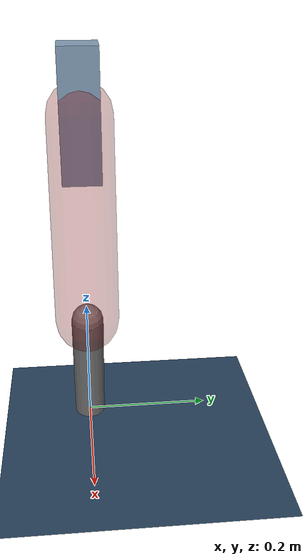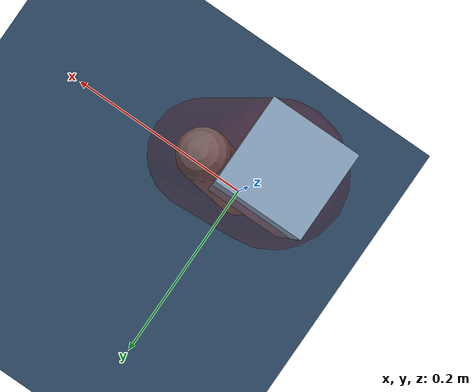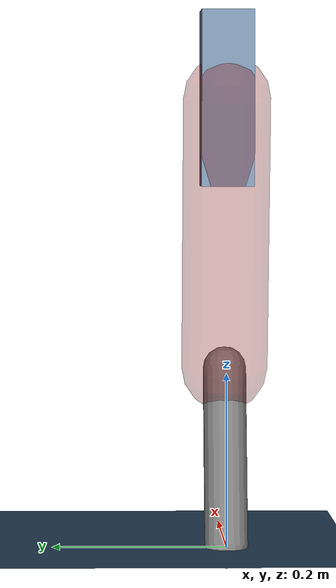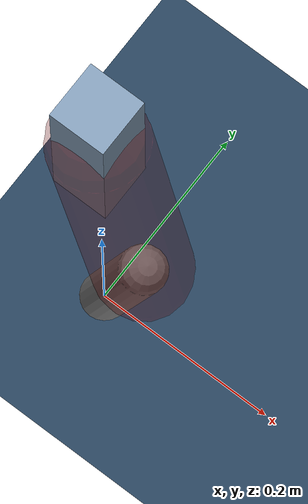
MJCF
<mujoco model="Hopper2D">
	<compiler inertiafromgeom="true" angle="radian" />
	<option timestep="0.001" integrator="implicit" cone="elliptic" solver="Newton" tolerance="1e-10" />

	<default>
		<geom contype="1" conaffinity="1" condim="3" friction="2 0.005 0.0001" solref="0.005 1" />
		<joint limited="true" damping="0.1" />
	</default>

	<asset>
		<texture name="skybox" type="skybox" builtin="gradient" rgb1=".4 .6 .8" rgb2="0 0 0" width="800" height="800" />
		<texture name="grid" type="2d" builtin="checker" rgb1=".1 .2 .3" rgb2=".2 .3 .4" width="300" height="300" mark="edge" markrgb=".2 .3 .4" />
		<material name="ground" texture="grid" texrepeat="1 1" texuniform="true" reflectance="0.1" />
		<material name="leg" rgba="0.5 0.6 0.7 1" />
	</asset>

	<worldbody>

		<geom name="floor" type="plane" size="5 5 0.25" material="ground" />

		<light directional="false" diffuse="0.8 0.8 0.8" specular="0.3 0.3 0.3" pos="0 0 2" dir="0 0 -1" />
		<light mode="targetbodycom" target="base" directional="false" diffuse="0.8 0.8 0.8" specular="0.3 0.3 0.3" pos="0 0 2" dir="0 0 -1" />

		<camera name="fixed" pos="0 -2 1" xyaxes="1 0 0 0 0 1" />
		<camera name="tracking" mode="trackcom" pos="0 -3 1" />

		<body name="root" pos="0 0 0.5151609290553438">
			<joint name="slide_x" type="slide" axis="1 0 0" range="-100 100" />
			<joint name="slide_z" type="slide" axis="0 0 1" range="0 10" />

			<body name="base" pos="0 0 0">
				<geom name="torso" type="box" size="0.03 0.03 0.1" mass="2.372" material="leg" />

				<body name="link1" pos="0 0 0" euler="0 1.4126416012833143 0">
					<joint type="hinge" axis="0 -1 0" pos="0 0 0" name="hinge1" limited="true" range="-3.14 3.14" stiffness="0" damping="0.1" />
					<geom name="thigh" type="capsule" fromto="0 0 0 0.31660333290927817 0 0" size="0.05" rgba="0.5 0 0 0.3" mass="1.033928998855051" />

					<body name="link2" pos="0.31660333290927817 0 0" euler="0 0.39958228032373094 0">
						<joint type="hinge" axis="0 -1 0" pos="0 0 0" name="hinge2" limited="true" range="-3.14 3.14" stiffness="0" damping="0.1" />
						<geom name="shank" type="capsule" fromto="0 0 0 0.2085575961460657 0 0" size="0.025" mass="0.40810183653145915" />

					</body>
				</body>
			</body>
		</body>
	</worldbody>

	<actuator>
		<motor name="torque1" joint="hinge1" ctrlrange="-68.94383141386224 68.94383141386224" ctrllimited="true" gear="1" />
		<motor name="torque2" joint="hinge2" ctrlrange="-96.45648831255002 96.45648831255002" ctrllimited="true" gear="1" />
	</actuator>
</mujoco>
